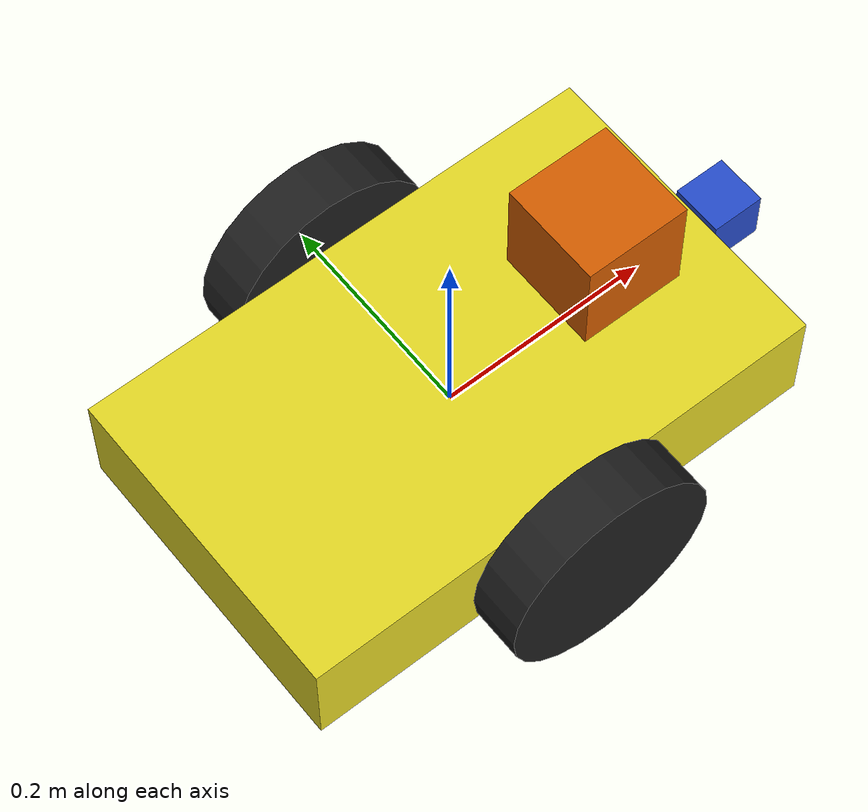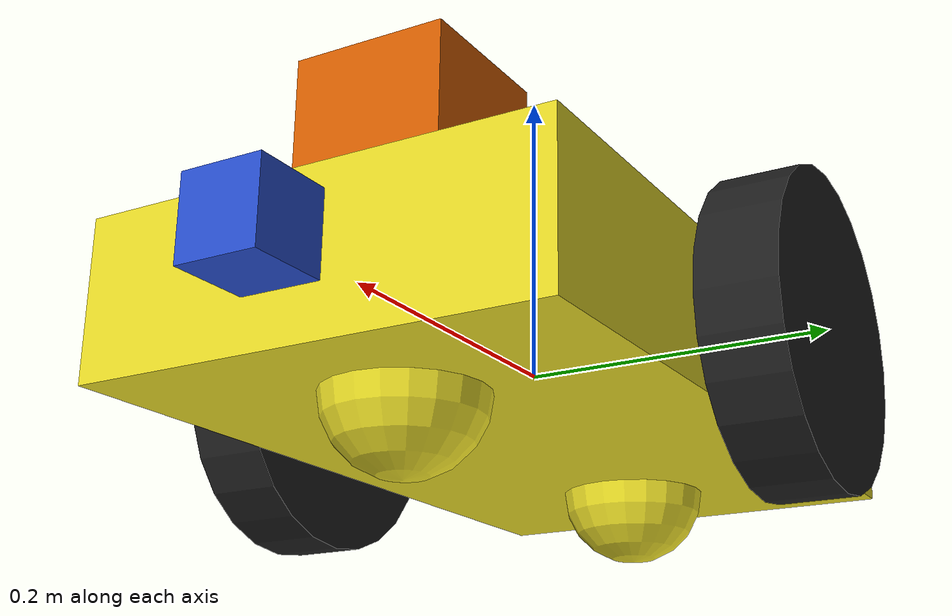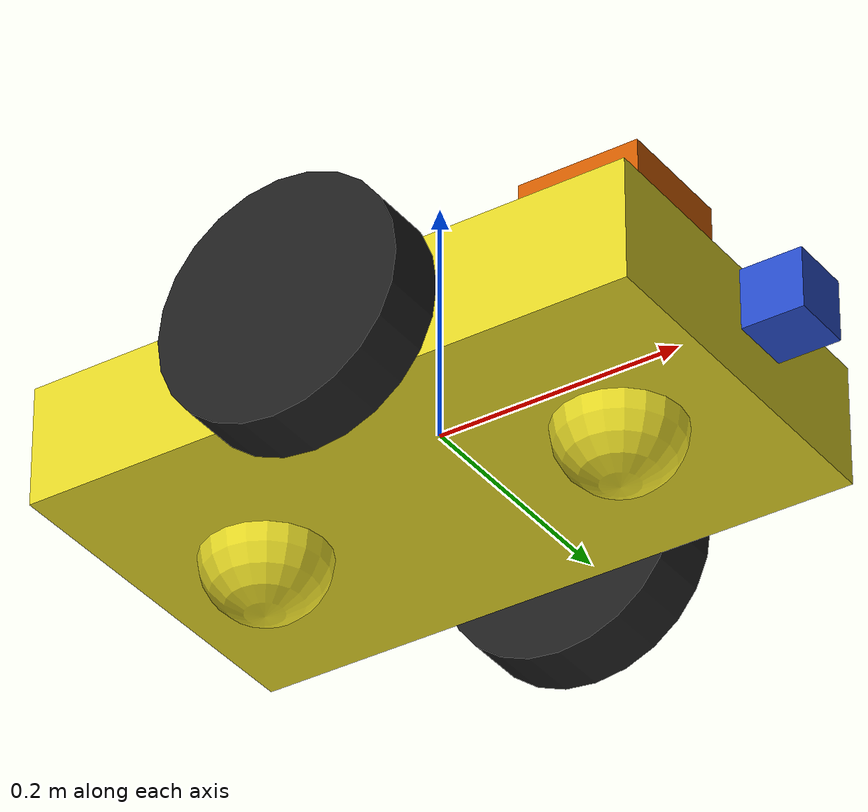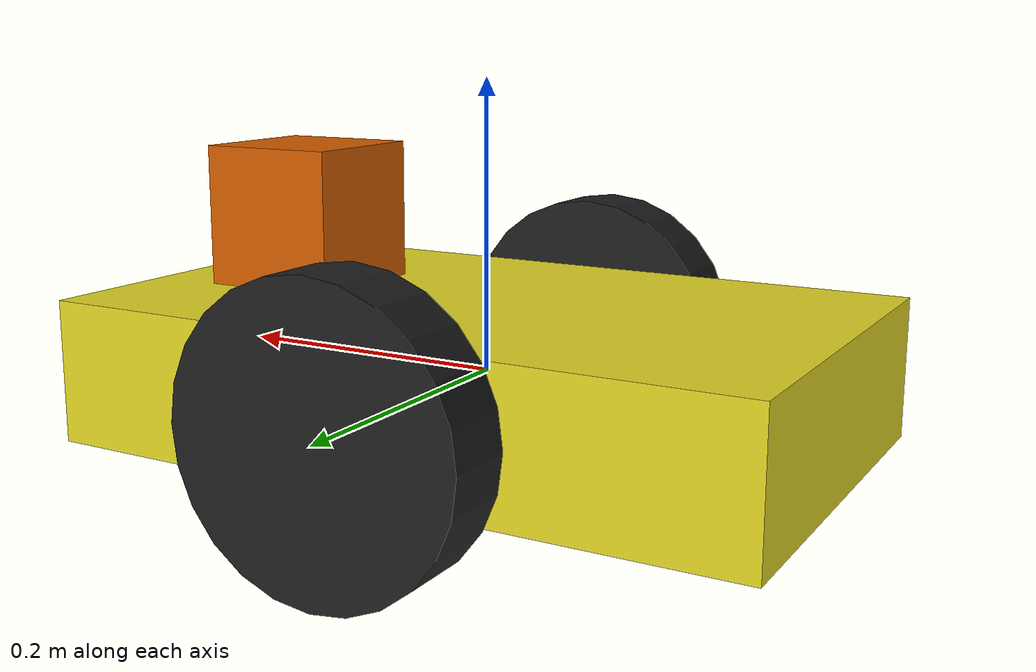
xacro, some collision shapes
<?xml version='1.0'?>

<robot name="my_robot" xmlns:xacro="http://www.ros.org/wiki/xacro">
<xacro:include filename="$(find my_robot)/urdf/my_robot.gazebo" />
  <link name="robot_footprint"></link>

  <joint name="robot_footprint_joint" type="fixed">
    <origin xyz="0 0 0" rpy="0 0 0" />
    <parent link="robot_footprint"/>
    <child link="chassis" />
  </joint>

  <link name='chassis'>
    <pose>0 0 0.1 0 0 0</pose>

    <inertial>
      <mass value="17.0"/>
      <origin xyz="0.0 0 0" rpy=" 0 0 0"/>
      <inertia
          ixx="0.1" ixy="0" ixz="0"
          iyy="0.1" iyz="0"
          izz="0.1"
      />
    </inertial>

    <collision name='collision'>
      <origin xyz="0 0 0" rpy=" 0 0 0"/>
      <geometry>
        <box size=".7 .2 .2"/>
      </geometry>
    </collision>

    <visual name='chassis_visual'>
      <origin xyz="0 0 0" rpy=" 0 0 0"/>
      <geometry>
        <box size=".5 .3 .1"/>
      </geometry>
    </visual>

    <collision name='back_caster_collision'>
      <origin xyz="-0.15 0 -0.05" rpy=" 0 0 0"/>
      <geometry>
        <sphere radius="0.0499"/>
      </geometry>
    </collision>

    <visual name='back_caster_visual'>
      <origin xyz="-0.15 0 -0.05" rpy=" 0 0 0"/>
      <geometry>
        <sphere radius="0.05"/>
      </geometry>
    </visual>

    <collision name='front_caster_collision'>
      <origin xyz="0.15 0 -0.05" rpy=" 0 0 0"/>
      <geometry>
        <sphere radius="0.0499"/>
      </geometry>
    </collision>

    <visual name='front_caster_visual'>
      <origin xyz="0.15 0 -0.05" rpy=" 0 0 0"/>
      <geometry>
        <sphere radius="0.05"/>
      </geometry>
    </visual>

  </link>

  <gazebo reference="chassis">
      <material>Gazebo/Yellow</material>
  </gazebo>

  <link name='left_wheel'>
    <pose>0 0 0 0 0 0</pose>

    <inertial>
      <mass value="5.0"/>
      <origin xyz="0.0 0 0" rpy=" 0 1.5707 1.5707"/>
      <inertia
          ixx="0.1" ixy="0" ixz="0"
          iyy="0.1" iyz="0"
          izz="0.1"
      />
    </inertial>

    <collision name='collision_left_wheel'>
      <origin xyz="0 0 0" rpy=" 0 1.5707 1.5707"/>
      <geometry>
        <cylinder radius="0.1" length="0.05"/>
      </geometry>
    </collision>

    <visual name='left_wheel_visual'>
      <origin xyz="0 0 0" rpy=" 0 1.5707 1.5707"/>
      <geometry>
        <cylinder radius="0.1" length="0.05"/>
      </geometry>
    </visual>
  </link>

  <link name='right_wheel'>
    <pose>0 0 0 0 0 0</pose>

    <inertial>
      <mass value="5.0"/>
      <origin xyz="0.0 0 0" rpy=" 0 1.5707 1.5707"/>
      <inertia
          ixx="0.1" ixy="0" ixz="0"
          iyy="0.1" iyz="0"
          izz="0.1"
      />
    </inertial>

    <collision name='collision_right_wheel'>
      <origin xyz="0 0 0" rpy=" 0 1.5707 1.5707"/>
      <geometry>
        <cylinder radius="0.1" length="0.05"/>
      </geometry>
    </collision>

    <visual name='right_wheel_visual'>
      <origin xyz="0 0 0" rpy=" 0 1.5707 1.5707"/>
      <geometry>
        <cylinder radius="0.1" length="0.05"/>
      </geometry>
    </visual>
  </link>

  <gazebo reference="right_wheel">
      <material>Gazebo/Black</material>
  </gazebo>
  <gazebo reference="left_wheel">
      <material>Gazebo/Black</material>
  </gazebo>

  <joint type="continuous" name="left_wheel_hinge">
    <origin xyz="0 0.18 0" rpy="0 0 0"/>
    <child link="left_wheel"/>
    <parent link="chassis"/>
    <axis xyz="0 1 0" rpy="0 0 0"/>
    <limit effort="10000" velocity="1000"/>
    <dynamics damping="1.0" friction="1.0"/>
  </joint>

  <joint type="continuous" name="right_wheel_hinge">
    <origin xyz="0 -0.18 0" rpy="0 0 0"/>
    <child link="right_wheel"/>
    <parent link="chassis"/>
    <axis xyz="0 1 0" rpy="0 0 0"/>
    <limit effort="10000" velocity="1000"/>
    <dynamics damping="1.0" friction="1.0"/>
  </joint>

  <link name='camera'>
    <pose>0 0 0 0 0 0</pose>

    <inertial>
      <mass value="0.1"/>
      <origin xyz="0.0 0 0" rpy=" 0 0 0"/>
      <inertia
          ixx="1e-6" ixy="0" ixz="0"
          iyy="1e-6" iyz="0"
          izz="1e-6"
      />
    </inertial>

  <collision name='collision_camera'>
      <origin xyz="0 0 0" rpy=" 0 0 0"/>
      <geometry>
        <box size="0.05 0.05 0.05"/>
      </geometry>
    </collision>

  <visual name='camera_visual'>
      <origin xyz="0 0 0" rpy=" 0 0 0"/>
      <geometry>
        <box size="0.05 0.05 0.05"/>
      </geometry>
    </visual>
  </link>

  <joint type="fixed" name="camera_joint">
    <origin xyz="0.29 0 0" rpy="0 0 0"/>
    <child link="camera"/>
    <parent link="chassis"/>
    <axis xyz="0 1 0" rpy="0 0 0"/>
    <limit effort="10000" velocity="1000"/>
    <dynamics damping="1.0" friction="1.0"/>
  </joint>
  <gazebo reference="camera">
      <material>Gazebo/Blue</material>
  </gazebo>
  <link name='hokuyo_lidar'>
    <pose>0 0 0 0 0 0</pose>

    <inertial>
      <mass value="1e-5"/>
      <origin xyz="0.0 0 0" rpy=" 0 0 0"/>
      <inertia
          ixx="1e-6" ixy="0" ixz="0"
          iyy="1e-6" iyz="0"
          izz="1e-6"
      />
    </inertial>

    <collision name='collision_hokuyo_lidar'>
      <origin xyz="0 0 0" rpy=" 0 0 0"/>
      <geometry>
        <box size="0.1 0.1 0.1"/>
      </geometry>
    </collision>

    <visual name='camera_visual'>
      <origin xyz="0 0 0" rpy=" 0 0 0"/>
      <geometry>
        <mesh filename="package://my_robot/meshes/hokuyo.dae"/>
      </geometry>
    </visual>
  </link>

  <joint type="fixed" name="hokuyo_joint">
    <origin xyz="0.15 0.0 0.1" rpy="0 0 0"/>
    <child link="hokuyo_lidar"/>
    <parent link="chassis"/>
    <axis xyz="0 1 0" rpy="0 0 0"/>
    <limit effort="10000" velocity="1000"/>
    <dynamics damping="1.0" friction="1.0"/>
  </joint>

</robot>
